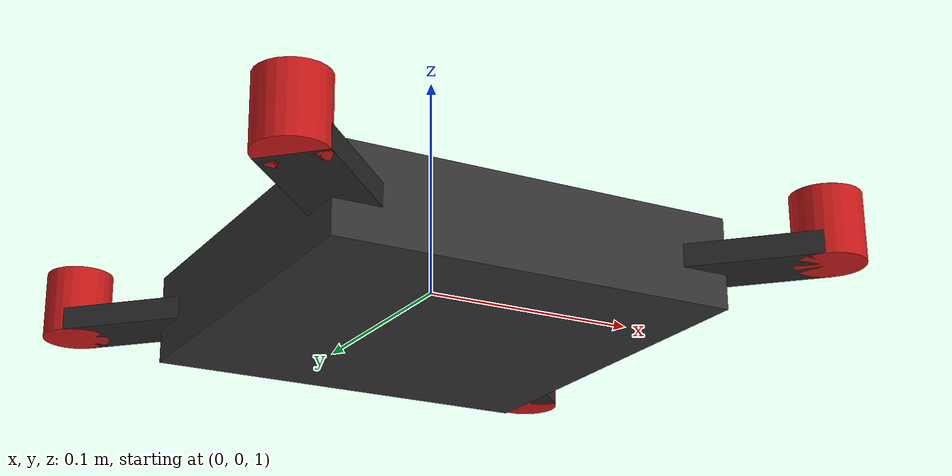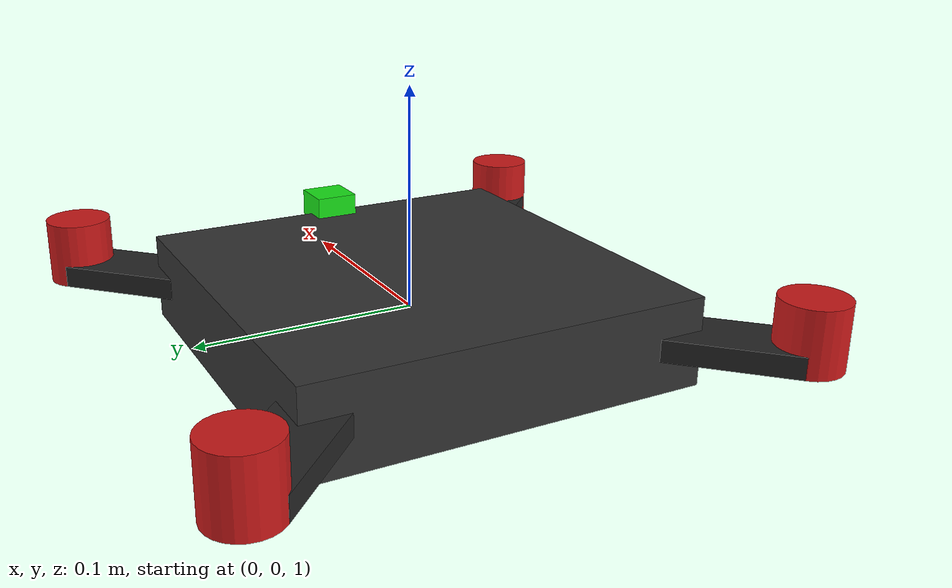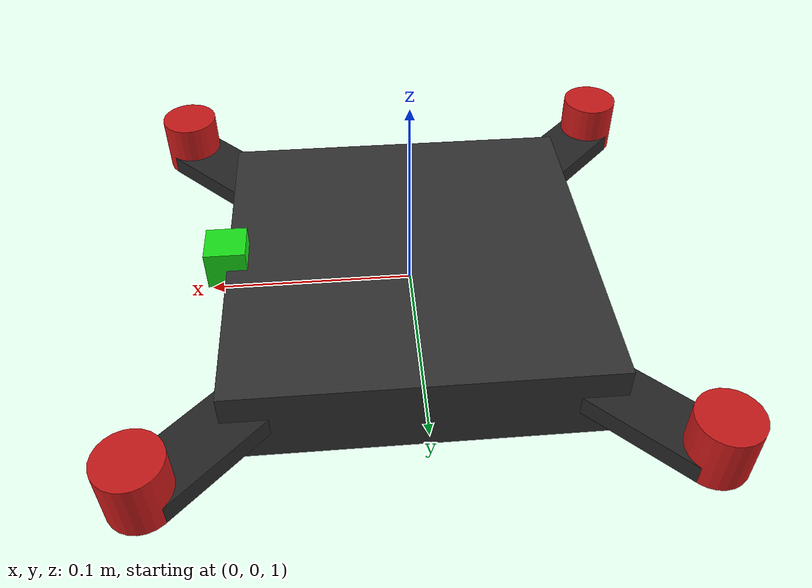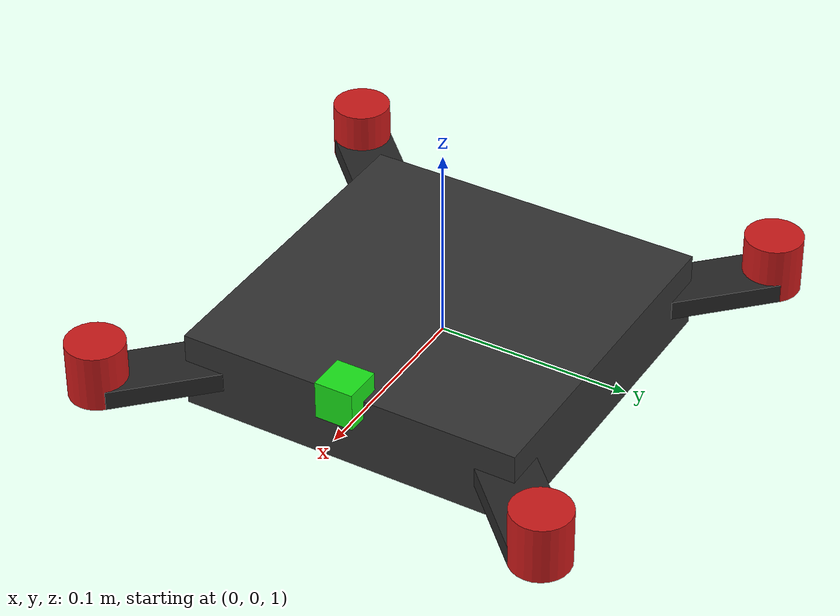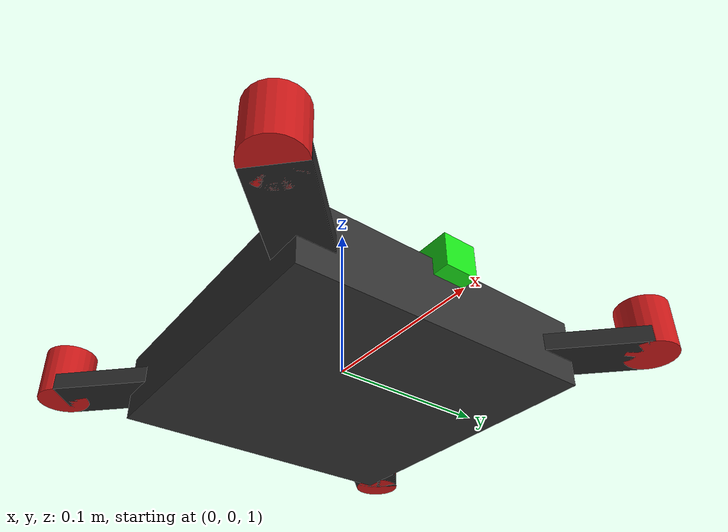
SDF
<?xml version="1.0" ?>
<sdf version="1.9">
  <model name="claudedrone">
    <!-- if you want the model stay one position -->
    <static>true</static>

    <pose>0 0 1.0 0 0 0</pose>

    <link name="base_link">

      <!-- Масса и инерция -->
      <inertial>
        <mass>1.2</mass>
        <inertia>
          <ixx>0.014</ixx><ixy>0</ixy><ixz>0</ixz>
          <iyy>0.014</iyy><iyz>0</iyz>
          <izz>0.024</izz>
        </inertia>
      </inertial>

      <!-- Физическая форма -->
      <collision name="body_col">
        <geometry>
          <box><size>0.18 0.18 0.06</size></box>
        </geometry>
      </collision>

      <!-- Основной корпус — тёмный -->
      <visual name="body_vis">
        <geometry>
          <box><size>0.18 0.18 0.04</size></box>
        </geometry>
        <material>
          <ambient>0.1 0.1 0.1 1</ambient>
          <diffuse>0.2 0.2 0.2 1</diffuse>
        </material>
      </visual>

      <!-- Arm 1 — перед-право -->
      <visual name="arm1">
        <pose>0.07 0.07 0 0 0 0.785</pose>
        <geometry>
          <box><size>0.14 0.03 0.01</size></box>
        </geometry>
        <material>
          <ambient>0.15 0.15 0.15 1</ambient>
          <diffuse>0.15 0.15 0.15 1</diffuse>
        </material>
      </visual>

      <!-- Arm 2 — перед-лево -->
      <visual name="arm2">
        <pose>-0.07 0.07 0 0 0 -0.785</pose>
        <geometry>
          <box><size>0.14 0.03 0.01</size></box>
        </geometry>
        <material>
          <ambient>0.15 0.15 0.15 1</ambient>
          <diffuse>0.15 0.15 0.15 1</diffuse>
        </material>
      </visual>

      <!-- Arm 3 — зад-право -->
      <visual name="arm3">
        <pose>0.07 -0.07 0 0 0 -0.785</pose>
        <geometry>
          <box><size>0.14 0.03 0.01</size></box>
        </geometry>
        <material>
          <ambient>0.15 0.15 0.15 1</ambient>
          <diffuse>0.15 0.15 0.15 1</diffuse>
        </material>
      </visual>

      <!-- Arm 4 — зад-лево -->
      <visual name="arm4">
        <pose>-0.07 -0.07 0 0 0 0.785</pose>
        <geometry>
          <box><size>0.14 0.03 0.01</size></box>
        </geometry>
        <material>
          <ambient>0.15 0.15 0.15 1</ambient>
          <diffuse>0.15 0.15 0.15 1</diffuse>
        </material>
      </visual>

      <!-- Моторы — красные цилиндры -->
      <visual name="motor1">
        <pose>0.12 0.12 0.01 0 0 0</pose>
        <geometry>
          <cylinder><radius>0.015</radius><length>0.03</length></cylinder>
        </geometry>
        <material><ambient>0.8 0.1 0.1 1</ambient><diffuse>0.8 0.1 0.1 1</diffuse></material>
      </visual>

      <visual name="motor2">
        <pose>-0.12 0.12 0.01 0 0 0</pose>
        <geometry>
          <cylinder><radius>0.015</radius><length>0.03</length></cylinder>
        </geometry>
        <material><ambient>0.8 0.1 0.1 1</ambient><diffuse>0.8 0.1 0.1 1</diffuse></material>
      </visual>

      <visual name="motor3">
        <pose>0.12 -0.12 0.01 0 0 0</pose>
        <geometry>
          <cylinder><radius>0.015</radius><length>0.03</length></cylinder>
        </geometry>
        <material><ambient>0.8 0.1 0.1 1</ambient><diffuse>0.8 0.1 0.1 1</diffuse></material>
      </visual>

      <visual name="motor4">
        <pose>-0.12 -0.12 0.01 0 0 0</pose>
        <geometry>
          <cylinder><radius>0.015</radius><length>0.03</length></cylinder>
        </geometry>
        <material><ambient>0.8 0.1 0.1 1</ambient><diffuse>0.8 0.1 0.1 1</diffuse></material>
      </visual>

      <!-- Индикатор перед — зелёный -->
      <visual name="front_indicator">
        <pose>0.09 0 0.02 0 0 0</pose>
        <geometry>
          <box><size>0.02 0.02 0.02</size></box>
        </geometry>
        <material><ambient>0.1 0.9 0.1 1</ambient><diffuse>0.1 0.9 0.1 1</diffuse></material>
      </visual>

      <!-- ============================================================
           TF LUNA ВНИЗ — высота над полом
      ============================================================ -->
      <sensor name="tf_luna_down" type="gpu_lidar">
        <pose>0 0 -0.03 0 1.5708 0</pose>
        <topic>/drone/tf_luna_down</topic>
        <update_rate>10</update_rate>
        <!-- add visualisation for sensors -->
        <visualize>true</visualize>
        <lidar>
          <scan>
            <horizontal>
              <samples>1</samples>
              <resolution>1</resolution>
              <min_angle>0</min_angle>
              <max_angle>0</max_angle>
            </horizontal>
          </scan>
          <range>
            <min>0.1</min>
            <max>8.0</max>
            <resolution>0.01</resolution>
          </range>
          <noise>
            <type>gaussian</type>
            <mean>0.0</mean>
            <stddev>0.005</stddev>
          </noise>
        </lidar>
      </sensor>

      <!-- ============================================================
           TF LUNA ВПЕРЁД — 2D скан
      ============================================================ -->
      <sensor name="tf_luna_front" type="gpu_lidar">
        <pose>0.09 0 0 0 0 0</pose>
        <topic>/drone/tf_luna_scan</topic>
        <update_rate>10</update_rate>
        <!-- add visualisation for sensors -->
        <visualize>true</visualize>
        <lidar>
          <scan>
            <horizontal>
              <samples>1</samples>
              <resolution>1</resolution>
              <min_angle>0</min_angle>
              <max_angle>0</max_angle>
            </horizontal>
          </scan>
          <range>
            <min>0.2</min>
            <max>8.0</max>
            <resolution>0.01</resolution>
          </range>
          <noise>
            <type>gaussian</type>
            <mean>0.0</mean>
            <stddev>0.01</stddev>
          </noise>
        </lidar>
      </sensor>

      <!-- ============================================================
           VL53L0X x6 — периметр 360°
      ============================================================ -->

      <!-- VL0 — 0° ПЕРЕД -->
      <sensor name="vl53l0x_0" type="gpu_lidar">
        <pose>0.09 0 0 0 0 0</pose>
        <topic>/drone/vl53l0x/ch0</topic>
        <update_rate>10</update_rate>
        <lidar>
          <scan>
            <horizontal>
              <samples>1</samples>
              <resolution>1</resolution>
              <min_angle>0</min_angle>
              <max_angle>0</max_angle>
            </horizontal>
          </scan>
          <range><min>0.03</min><max>2.0</max><resolution>0.005</resolution></range>
          <noise><type>gaussian</type><mean>0</mean><stddev>0.003</stddev></noise>
        </lidar>
      </sensor>

      <!-- VL1 — 60° ПЕРЕД-ПРАВО -->
      <sensor name="vl53l0x_1" type="gpu_lidar">
        <pose>0.045 0.078 0 0 0 1.0472</pose>
        <topic>/drone/vl53l0x/ch1</topic>
        <update_rate>10</update_rate>
        <lidar>
          <scan>
            <horizontal>
              <samples>1</samples>
              <resolution>1</resolution>
              <min_angle>0</min_angle>
              <max_angle>0</max_angle>
            </horizontal>
          </scan>
          <range><min>0.03</min><max>2.0</max><resolution>0.005</resolution></range>
          <noise><type>gaussian</type><mean>0</mean><stddev>0.003</stddev></noise>
        </lidar>
      </sensor>

      <!-- VL2 — 120° ЗАД-ПРАВО -->
      <sensor name="vl53l0x_2" type="gpu_lidar">
        <pose>-0.045 0.078 0 0 0 2.0944</pose>
        <topic>/drone/vl53l0x/ch2</topic>
        <update_rate>10</update_rate>
        <!-- add visualisation for sensors -->
        <visualize>true</visualize>
        <lidar>
          <scan>
            <horizontal>
              <samples>1</samples>
              <resolution>1</resolution>
              <min_angle>0</min_angle>
              <max_angle>0</max_angle>
            </horizontal>
          </scan>
          <range><min>0.03</min><max>2.0</max><resolution>0.005</resolution></range>
          <noise><type>gaussian</type><mean>0</mean><stddev>0.003</stddev></noise>
        </lidar>
      </sensor>

      <!-- VL3 — 180° ЗАД -->
      <sensor name="vl53l0x_3" type="gpu_lidar">
        <pose>-0.09 0 0 0 0 3.1416</pose>
        <topic>/drone/vl53l0x/ch3</topic>
        <update_rate>10</update_rate>
        <!-- add visualisation for sensors -->
        <visualize>true</visualize>
        <lidar>
          <scan>
            <horizontal>
              <samples>1</samples>
              <resolution>1</resolution>
              <min_angle>0</min_angle>
              <max_angle>0</max_angle>
            </horizontal>
          </scan>
          <range><min>0.03</min><max>2.0</max><resolution>0.005</resolution></range>
          <noise><type>gaussian</type><mean>0</mean><stddev>0.003</stddev></noise>
        </lidar>
      </sensor>

      <!-- VL4 — 240° ЗАД-ЛЕВО -->
      <sensor name="vl53l0x_4" type="gpu_lidar">
        <pose>-0.045 -0.078 0 0 0 4.1888</pose>
        <topic>/drone/vl53l0x/ch4</topic>
        <update_rate>10</update_rate>
        <lidar>
          <scan>
            <horizontal>
              <samples>1</samples>
              <resolution>1</resolution>
              <min_angle>0</min_angle>
              <max_angle>0</max_angle>
            </horizontal>
          </scan>
          <range><min>0.03</min><max>2.0</max><resolution>0.005</resolution></range>
          <noise><type>gaussian</type><mean>0</mean><stddev>0.003</stddev></noise>
        </lidar>
      </sensor>

      <!-- VL5 — 300° ПЕРЕД-ЛЕВО -->
      <sensor name="vl53l0x_5" type="gpu_lidar">
        <pose>0.045 -0.078 0 0 0 5.2360</pose>
        <topic>/drone/vl53l0x/ch5</topic>
        <update_rate>10</update_rate>
        <lidar>
          <scan>
            <horizontal>
              <samples>1</samples>
              <resolution>1</resolution>
              <min_angle>0</min_angle>
              <max_angle>0</max_angle>
            </horizontal>
          </scan>
          <range><min>0.03</min><max>2.0</max><resolution>0.005</resolution></range>
          <noise><type>gaussian</type><mean>0</mean><stddev>0.003</stddev></noise>
        </lidar>
      </sensor>

    </link>
  </model>
</sdf>
